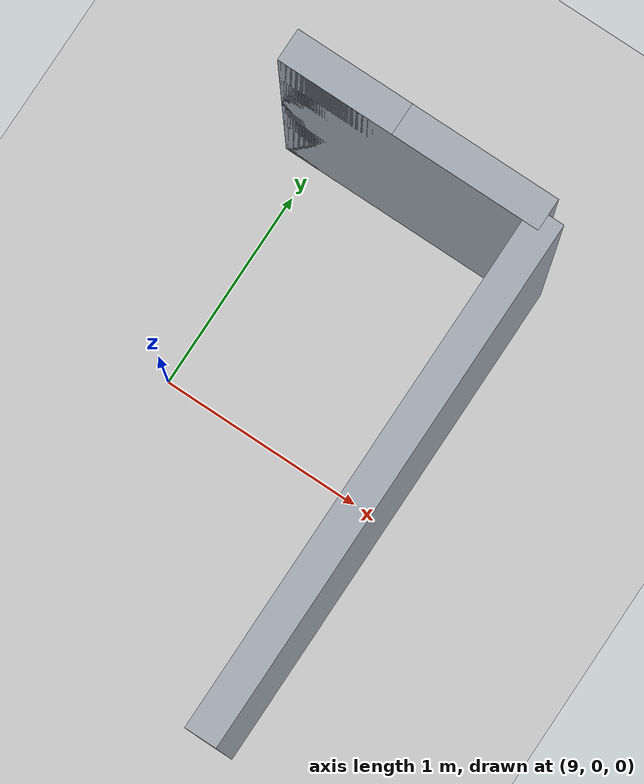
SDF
<sdf version="1.9">
 <world name="default">
  <model name="ground_plane">
   <static>true</static>
   <pose>5.05 0 -0.05 0 0 0</pose>
   <link name="body">
    <collision name="collision"><geometry><box><size>14.1 12 0.1</size></box></geometry></collision>
    <visual name="visual">
     <geometry><box><size>14.1 12 0.1</size></box></geometry>
     <material><ambient>0.8 0.8 0.8 1</ambient><diffuse>0.8 0.8 0.8 1</diffuse></material>
    </visual>
   </link>
  </model>
  <model name="end_wall">
   <static>true</static>
   <pose>10.1 0 1.1 0 0 0</pose>
   <link name="body">
    <collision name="collision"><geometry><box><size>0.15 2.5 2.2</size></box></geometry></collision>
    <visual name="visual">
     <geometry><box><size>0.15 2.5 2.2</size></box></geometry>
     <material><ambient>0.65 0.68 0.72 1</ambient><diffuse>0.65 0.68 0.72 1</diffuse></material>
    </visual>
   </link>
  </model>
  <model name="jamb_1_2_1">
   <static>true</static>
   <pose>9.125 1.25 1.1 0 0 0</pose>
   <link name="body">
    <collision name="collision"><geometry><box><size>0.55 0.15 2.2</size></box></geometry></collision>
    <visual name="visual">
     <geometry><box><size>0.55 0.15 2.2</size></box></geometry>
     <material><ambient>0.65 0.68 0.72 1</ambient><diffuse>0.65 0.68 0.72 1</diffuse></material>
    </visual>
   </link>
  </model>
  <model name="hall_end_1">
   <static>true</static>
   <pose>9.475 1.25 1.1 0 0 0</pose>
   <link name="body">
    <collision name="collision"><geometry><box><size>1.25 0.15 2.2</size></box></geometry></collision>
    <visual name="visual">
     <geometry><box><size>1.25 0.15 2.2</size></box></geometry>
     <material><ambient>0.65 0.68 0.72 1</ambient><diffuse>0.65 0.68 0.72 1</diffuse></material>
    </visual>
   </link>
  </model>
 </world>
</sdf>
